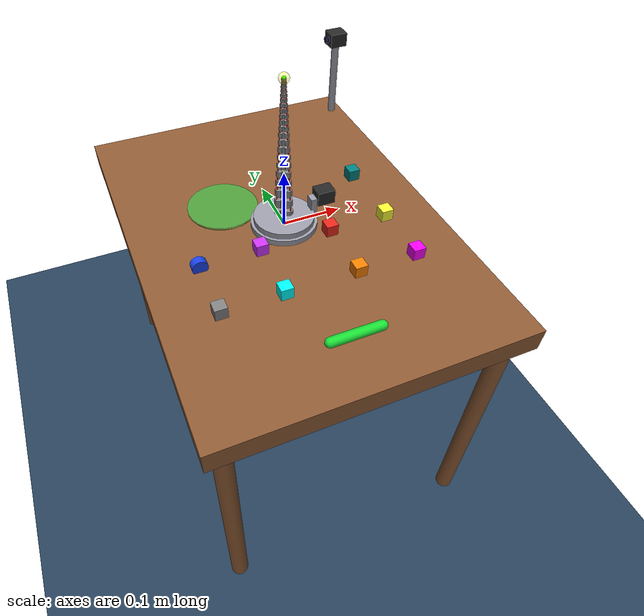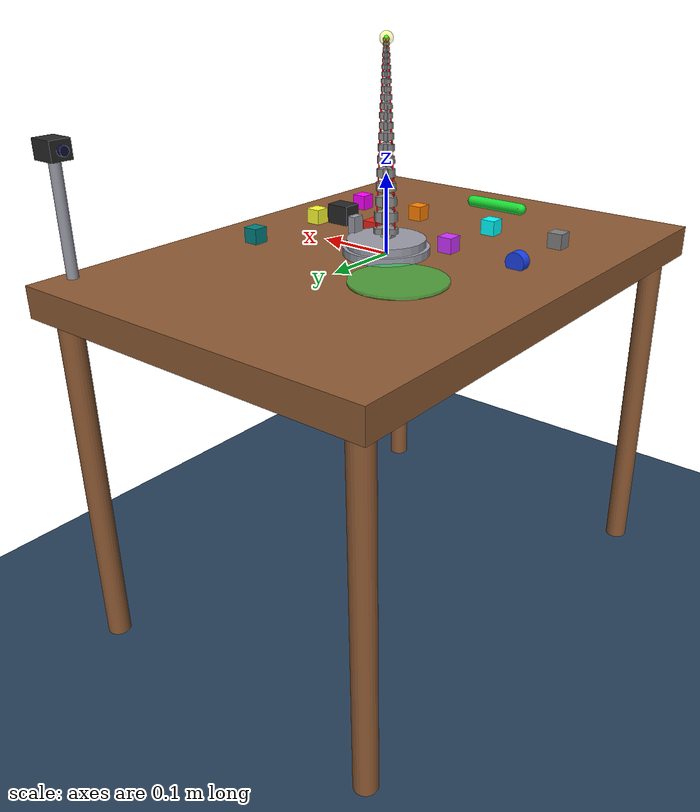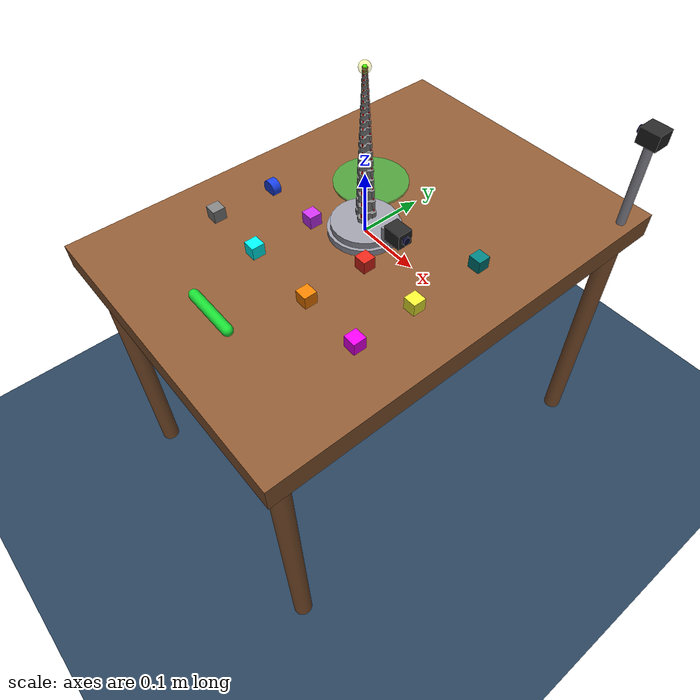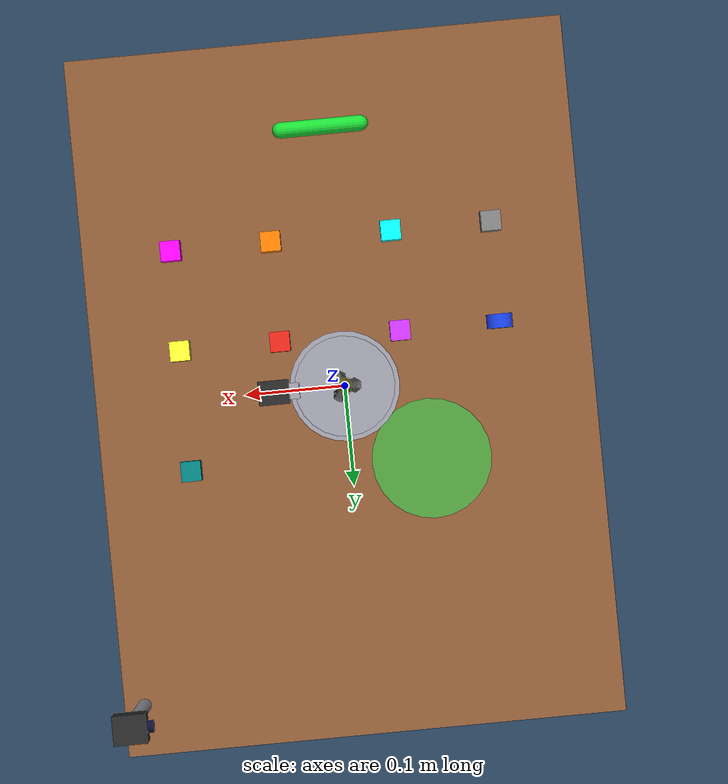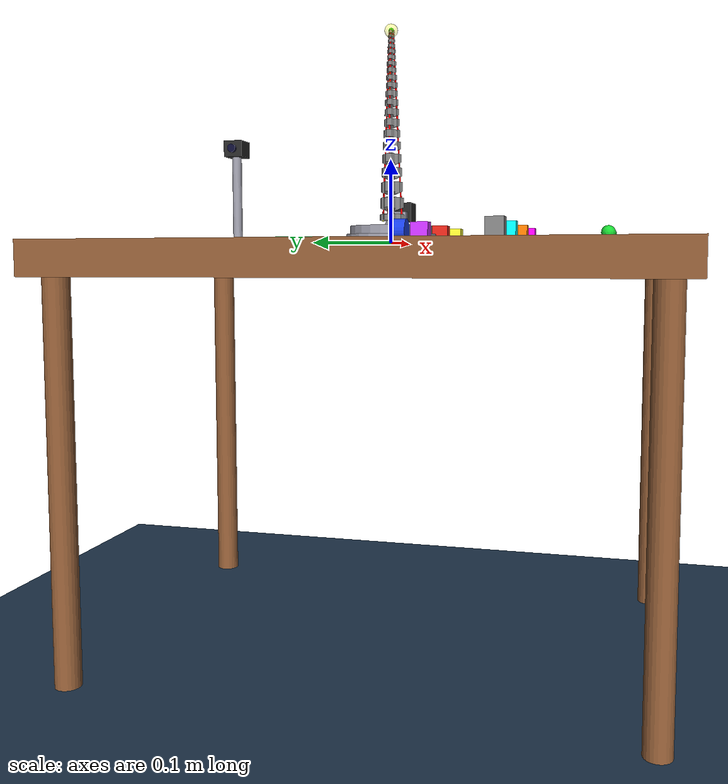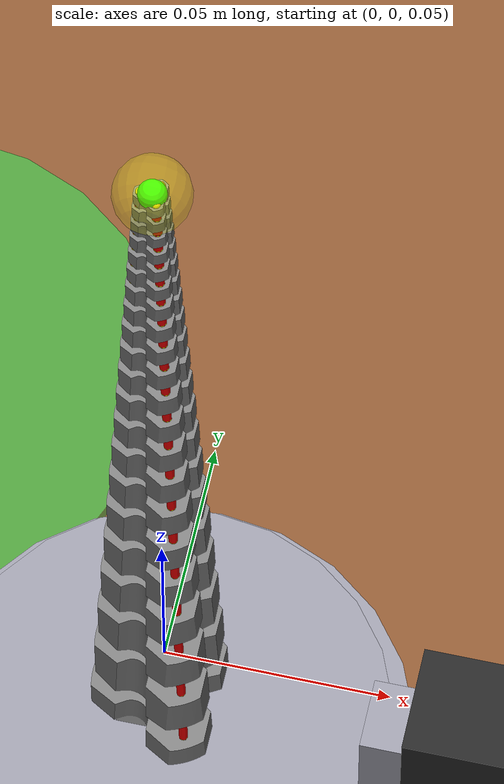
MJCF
<?xml version="1.0" ?>
<mujoco model="tentacle_pick_place">
  <compiler angle="radian" autolimits="true"/>
  <option timestep="0.002" iterations="120" gravity="0 0 -9.81" integrator="implicitfast" cone="elliptic"/>

  <default>
    <joint stiffness="0.0" damping="0.0" range="0 0.9"/>
    <geom type="mesh" xyaxes="0 0 -1 -1 0 0" contype="0" conaffinity="0" margin="0.001" solref="0.01 1" solimp="0.9 0.95 0.001"/>
  </default>

  <asset>
    <!-- Robot mesh assets -->
    <mesh name="mesh1" file="mujoco_rex_assets/Part1.stl" scale="0.001 0.001 0.001"/>
    <mesh name="mesh2" file="mujoco_rex_assets/Part2.stl" scale="0.001 0.001 0.001"/>
    <mesh name="mesh3" file="mujoco_rex_assets/Part3.stl" scale="0.001 0.001 0.001"/>
    <mesh name="mesh4" file="mujoco_rex_assets/Part4.stl" scale="0.001 0.001 0.001"/>
    <mesh name="mesh5" file="mujoco_rex_assets/Part5.stl" scale="0.001 0.001 0.001"/>
    <mesh name="mesh6" file="mujoco_rex_assets/Part6.stl" scale="0.001 0.001 0.001"/>
    <mesh name="mesh7" file="mujoco_rex_assets/Part7.stl" scale="0.001 0.001 0.001"/>
    <mesh name="mesh8" file="mujoco_rex_assets/Part8.stl" scale="0.001 0.001 0.001"/>
    <mesh name="mesh9" file="mujoco_rex_assets/Part9.stl" scale="0.001 0.001 0.001"/>
    <mesh name="mesh10" file="mujoco_rex_assets/Part10.stl" scale="0.001 0.001 0.001"/>
    <mesh name="mesh11" file="mujoco_rex_assets/Part11.stl" scale="0.001 0.001 0.001"/>
    <mesh name="mesh12" file="mujoco_rex_assets/Part12.stl" scale="0.001 0.001 0.001"/>
    <mesh name="mesh13" file="mujoco_rex_assets/Part13.stl" scale="0.001 0.001 0.001"/>
    <mesh name="mesh14" file="mujoco_rex_assets/Part14.stl" scale="0.001 0.001 0.001"/>
    <mesh name="mesh15" file="mujoco_rex_assets/Part15.stl" scale="0.001 0.001 0.001"/>
    <mesh name="mesh16" file="mujoco_rex_assets/Part16.stl" scale="0.001 0.001 0.001"/>
    <mesh name="mesh17" file="mujoco_rex_assets/Part17.stl" scale="0.001 0.001 0.001"/>
    <mesh name="mesh18" file="mujoco_rex_assets/Part18.stl" scale="0.001 0.001 0.001"/>
    <mesh name="mesh19" file="mujoco_rex_assets/Part19.stl" scale="0.001 0.001 0.001"/>
    <mesh name="mesh20" file="mujoco_rex_assets/Part20.stl" scale="0.001 0.001 0.001"/>
    <mesh name="mesh21" file="mujoco_rex_assets/Part21.stl" scale="0.001 0.001 0.001"/>

    <!-- Textures -->
    <texture type="skybox" builtin="gradient" rgb1="0.15 0.20 0.35" rgb2="0.02 0.02 0.05" width="512" height="3072"/>
    <texture type="2d" name="groundplane" builtin="checker" mark="edge" rgb1="0.2 0.3 0.4" rgb2="0.1 0.2 0.3" markrgb="0.8 0.8 0.8" width="300" height="300"/>
    <texture type="2d" name="wood_tex" builtin="flat" rgb1="0.55 0.35 0.2" rgb2="0.45 0.28 0.15" mark="random" markrgb="0.5 0.32 0.18" width="512" height="512"/>
    <texture type="2d" name="place_zone_tex" builtin="flat" rgb1="0.1 0.8 0.3" rgb2="0.1 0.7 0.25" width="128" height="128"/>

    <!-- Materials -->
    <material name="groundplane" texture="groundplane" texuniform="true" texrepeat="5 5" reflectance="0.2"/>
    <material name="wood_material" texture="wood_tex" texuniform="true" texrepeat="3 3" reflectance="0.1" specular="0.1" shininess="0.3"/>
    <material name="metal_base" rgba="0.6 0.6 0.65 1" specular="0.5" shininess="0.8" reflectance="0.3"/>
    <material name="camera_body" rgba="0.15 0.15 0.15 1" specular="0.3" shininess="0.5"/>
    <material name="camera_lens" rgba="0.05 0.05 0.2 1" specular="0.8" shininess="0.9" reflectance="0.5"/>
    <material name="place_zone_mat" texture="place_zone_tex" texuniform="true" rgba="0.1 0.9 0.3 0.6" specular="0.0"/>
    <material name="obj_red" rgba="0.9 0.15 0.1 1" specular="0.4" shininess="0.6"/>
    <material name="obj_blue" rgba="0.1 0.25 0.9 1" specular="0.4" shininess="0.6"/>
    <material name="obj_green" rgba="0.1 0.85 0.2 1" specular="0.4" shininess="0.6"/>
    <material name="tip_contact_mat" rgba="1 1 0 0.3" specular="0.0"/>
  </asset>

  <visual>
    <headlight diffuse="0.6 0.6 0.6" ambient="0.3 0.3 0.3" specular="0 0 0"/>
    <rgba haze="0.15 0.25 0.35 1"/>
    <global azimuth="150" elevation="-20"/>
    <quality shadowsize="4096"/>
  </visual>

  <worldbody>
    <!-- Lighting -->
    <light pos="0.3 -0.3 1.5" dir="-0.2 0.2 -1" directional="false" diffuse="0.8 0.8 0.8" specular="0.3 0.3 0.3" castshadow="true"/>
    <light pos="-0.3 0.3 1.0" dir="0.2 -0.2 -1" directional="false" diffuse="0.4 0.4 0.5" specular="0.1 0.1 0.1" castshadow="false"/>
    <light pos="0 0 2.0" dir="0 0 -1" directional="true" diffuse="0.3 0.3 0.3" ambient="0.15 0.15 0.15"/>

    <!-- Floor -->
    <geom name="floor" pos="0 0 -0.55" size="0 0 .125" type="plane" material="groundplane" conaffinity="1" contype="1" condim="3" xyaxes="1 0 0 0 1 0"/>

    <!-- Desk -->
    <body name="desk" pos="0 0 -0.02">
      <!-- Table top -->
      <geom name="table_top" type="box" pos="0 0 0" size="0.25 0.35 0.02" material="wood_material" conaffinity="1" contype="1" condim="4" xyaxes="1 0 0 0 1 0" friction="1.2 0.01 0.001" solref="0.006 1" solimp="0.95 0.99 0.001" mass="5.0"/>
      <!-- Table legs -->
      <geom name="leg1" type="cylinder" pos="0.22 0.32 -0.25" size="0.015 0.23" material="wood_material" conaffinity="1" contype="1" xyaxes="1 0 0 0 1 0"/>
      <geom name="leg2" type="cylinder" pos="-0.22 0.32 -0.25" size="0.015 0.23" material="wood_material" conaffinity="1" contype="1" xyaxes="1 0 0 0 1 0"/>
      <geom name="leg3" type="cylinder" pos="0.22 -0.32 -0.25" size="0.015 0.23" material="wood_material" conaffinity="1" contype="1" xyaxes="1 0 0 0 1 0"/>
      <geom name="leg4" type="cylinder" pos="-0.22 -0.32 -0.25" size="0.015 0.23" material="wood_material" conaffinity="1" contype="1" xyaxes="1 0 0 0 1 0"/>
    </body>

    <!-- Robot base -->
    <geom name="robot_base" type="cylinder" pos="0 0 0.01" size="0.05 0.01" material="metal_base" conaffinity="1" contype="1" xyaxes="1 0 0 0 1 0"/>
    <geom name="robot_base_ring" type="cylinder" pos="0 0 0.005" size="0.055 0.005" material="metal_base" conaffinity="0" contype="0" xyaxes="1 0 0 0 1 0"/>

    <!-- Camera module (mounted near base) -->
    <body name="camera_module" pos="0.07 0 0.04">
      <geom name="cam_body" type="box" size="0.015 0.012 0.012" material="camera_body" conaffinity="0" contype="0" xyaxes="1 0 0 0 1 0"/>
      <geom name="cam_lens" type="cylinder" pos="0.016 0 0" size="0.006 0.003" material="camera_lens" conaffinity="0" contype="0" euler="0 1.5708 0"/>
      <geom name="cam_mount" type="box" pos="-0.02 0 -0.015" size="0.005 0.008 0.015" material="metal_base" conaffinity="0" contype="0" xyaxes="1 0 0 0 1 0"/>
      <camera name="robot_cam" mode="fixed" pos="0.03 -0.12 0.11" xyaxes="0.848 0.530 0 -0.316 0.505 0.803" fovy="60"/>
    </body>

    <!-- Cameras -->
    <!-- Cameras -->
    <!-- Cameras -->
    <camera name="fixed_overview" mode="fixed" pos="0 -0.8 1.0" quat="0.924 0.383 0 0" fovy="55"/>
    <camera name="tracking_cam" mode="fixed" pos="0.35 -0.35 0.5" quat="0.854 0.354 0.146 0.354" fovy="75"/>
    <camera name="top_down" mode="fixed" pos="0 0 0.8" euler="0 0 0" fovy="60"/>
    <camera name="side_view" mode="fixed" pos="0.5 0 0.2" euler="1.5708 0 1.5708" fovy="60"/>
    <!-- Workspace camera: elevated 3/4 view framing the desk and all objects
         (look-at the table centre, for the YOLO vision demo). -->
    <camera name="workspace_cam" mode="fixed" pos="0.20 -0.28 0.24" xyaxes="0.832 0.555 0 -0.279 0.419 0.864" fovy="55"/>

    <!-- ===== CORNER TABLE CAMERA STAND ===== -->
    <!-- Mounted at far corner of table, covers full robot work envelope -->
    <body name="corner_cam_stand" pos="0.23 0.30 -0.02">
      <!-- Stand pole -->
      <geom type="cylinder" size="0.007 0.08" pos="0 0 0.08"
            material="metal_base" conaffinity="0" contype="0" xyaxes="1 0 0 0 1 0"/>
      <!-- Camera head housing -->
      <geom type="box" size="0.016 0.014 0.012" pos="0 0 0.168"
            material="camera_body" conaffinity="0" contype="0" xyaxes="1 0 0 0 1 0"/>
      <!-- Camera lens (visual) -->
      <geom type="cylinder" size="0.006 0.004" pos="-0.018 0 0.168"
            material="camera_lens" conaffinity="0" contype="0" euler="0 1.5708 0"/>
      <!-- Camera look-at: from world(0.215,0.30,0.148) toward robot center (0,0,0.12) -->
      <!-- xyaxes derived: cam-X=(-0.813,0.582,0), cam-Y=(-0.044,-0.062,0.997)         -->
      <!-- ensures cam-Z = (0.580,0.811,0.076) → cam looks in -(0.580,0.811,0.076)     -->
      <camera name="table_corner_cam" mode="fixed"
              pos="-0.015 0 0.168" xyaxes="-0.813 0.582 0 -0.044 -0.062 0.997" fovy="65"/>
    </body>

    <!-- Target site for RL policy -->
    <site name="target" type="sphere" size="0.01 0.01 0.01" rgba="1 0 0 0.8" pos="0 0 0"/>

    <!-- Ghost Cursor for Hand Tracking Feedback -->
    <site name="ghost_cursor" type="sphere" size="0.01 0.01 0.01" rgba="1 1 1 0.3" pos="0 0 0"/>

    <!-- Place target zone (on the desk surface) -->
    <site name="place_zone" type="cylinder" pos="-0.08 0.08 0.002" size="0.06 0.002" rgba="0.1 0.9 0.3 0.5"/>
    <geom name="place_zone_visual" type="cylinder" pos="-0.08 0.08 0.000" size="0.06 0.001" material="place_zone_mat" conaffinity="0" contype="0" xyaxes="1 0 0 0 1 0"/>
    <!-- ========== THE STACK (CENTER FRONT) ========== -->

    <body name="obj_cube" pos="0.06 -0.05 0.012">
      <freejoint/>
      <geom name="obj_cube_geom" type="box" size="0.01 0.01 0.01" material="obj_red" mass="0.02" contype="1" conaffinity="1" condim="4" margin="0.001" solref="0.006 1" solimp="0.95 0.99 0.001" friction="1.2 0.05 0.01"/>
      <site name="obj_cube_site" pos="0 0 0" size="0.002" rgba="1 1 1 0"/>
    </body>

    <body name="obj_cube_purple" pos="-0.06 -0.05 0.012">
      <freejoint/>
      <geom name="obj_cube_purple_geom" type="box" size="0.01 0.01 0.01" rgba="0.8 0.2 1.0 1.0" mass="0.02" contype="1" conaffinity="1" condim="4" margin="0.001" solref="0.006 1" solimp="0.95 0.99 0.001" friction="1.2 0.05 0.01"/>
      <site name="obj_cube_purple_site" pos="0 0 0" size="0.002" rgba="1 1 1 0"/>
    </body>

    <body name="obj_cube_yellow" pos="0.16 -0.05 0.012">
      <freejoint/>
      <geom name="obj_cube_yellow_geom" type="box" size="0.01 0.01 0.01" rgba="1.0 1.0 0.2 1.0" mass="0.02" contype="1" conaffinity="1" condim="4" margin="0.001" solref="0.006 1" solimp="0.95 0.99 0.001" friction="1.2 0.05 0.01"/>
      <site name="obj_cube_yellow_site" pos="0 0 0" size="0.002" rgba="1 1 1 0"/>
    </body>

    <body name="obj_cylinder" pos="-0.16 -0.05 0.008">
      <freejoint/>
      <geom name="obj_cylinder_geom" type="cylinder" size="0.013 0.007" material="obj_blue" mass="0.02" contype="1" conaffinity="1" condim="4" margin="0.001" solref="0.006 1" solimp="0.95 0.99 0.001" friction="1.2 0.05 0.01"/>
      <site name="obj_cylinder_site" pos="0 0 0" size="0.002" rgba="1 1 1 0"/>
    </body>

    <body name="obj_bar" pos="0.0 -0.26 0.009">
      <freejoint/>
      <geom name="obj_bar_geom" type="capsule" size="0.008 0.04" material="obj_green" mass="0.03" contype="1" conaffinity="1" condim="4" margin="0.001" solref="0.006 1" solimp="0.95 0.99 0.001" friction="1.2 0.05 0.01" euler="0 1.57 0"/>
      <site name="obj_bar_site" pos="0 0 0" size="0.002" rgba="1 1 1 0"/>
    </body>

    <!-- 5 Extra Cubes -->
    <body name="obj_cube_extra_1" pos="0.06 -0.15 0.012">
      <freejoint/>
      <geom name="obj_cube_extra_1_geom" type="box" size="0.01 0.01 0.01" rgba="1.0 0.5 0.0 1.0" mass="0.02" contype="1" conaffinity="1" condim="4" margin="0.001" solref="0.006 1" solimp="0.95 0.99 0.001" friction="1.2 0.05 0.01"/>
      <site name="obj_cube_extra_1_site" pos="0 0 0" size="0.002" rgba="1 1 1 0"/>
    </body>

    <body name="obj_cube_extra_2" pos="-0.06 -0.15 0.012">
      <freejoint/>
      <geom name="obj_cube_extra_2_geom" type="box" size="0.01 0.01 0.01" rgba="0.0 1.0 1.0 1.0" mass="0.02" contype="1" conaffinity="1" condim="4" margin="0.001" solref="0.006 1" solimp="0.95 0.99 0.001" friction="1.2 0.05 0.01"/>
      <site name="obj_cube_extra_2_site" pos="0 0 0" size="0.002" rgba="1 1 1 0"/>
    </body>

    <body name="obj_cube_extra_3" pos="0.16 -0.15 0.012">
      <freejoint/>
      <geom name="obj_cube_extra_3_geom" type="box" size="0.01 0.01 0.01" rgba="1.0 0.0 1.0 1.0" mass="0.02" contype="1" conaffinity="1" condim="4" margin="0.001" solref="0.006 1" solimp="0.95 0.99 0.001" friction="1.2 0.05 0.01"/>
      <site name="obj_cube_extra_3_site" pos="0 0 0" size="0.002" rgba="1 1 1 0"/>
    </body>

    <body name="obj_cube_extra_4" pos="-0.16 -0.15 0.012">
      <freejoint/>
      <geom name="obj_cube_extra_4_geom" type="box" size="0.01 0.01 0.01" rgba="0.5 0.5 0.5 1.0" mass="0.02" contype="1" conaffinity="1" condim="4" margin="0.001" solref="0.006 1" solimp="0.95 0.99 0.001" friction="1.2 0.05 0.01"/>
      <site name="obj_cube_extra_4_site" pos="0 0 0" size="0.002" rgba="1 1 1 0"/>
    </body>

    <body name="obj_cube_extra_5" pos="0.16 0.07 0.012">
      <freejoint/>
      <geom name="obj_cube_extra_5_geom" type="box" size="0.01 0.01 0.01" rgba="0.0 0.5 0.5 1.0" mass="0.02" contype="1" conaffinity="1" condim="4" margin="0.001" solref="0.006 1" solimp="0.95 0.99 0.001" friction="1.2 0.05 0.01"/>
      <site name="obj_cube_extra_5_site" pos="0 0 0" size="0.002" rgba="1 1 1 0"/>
    </body>

    <!-- ========== TENTACLE ROBOT ========== -->
    <body name="body1" pos="0 0 0.022">
      <geom name="geom1" type="mesh" mesh="mesh1" contype="1" conaffinity="0"/>
      <!-- Base yaw: rotates the whole tentacle about the vertical axis. This is
           the 3rd actuated task-DOF (true twist), held at 0 during RL. -->
      <!-- Yaw is heavily damped on purpose: rotating the compliant 20-joint
           backbone is a slow mode, so prioritise a stable, overshoot-free
           reorientation over a snappy (oscillating) one. -->
      <joint type="hinge" name="base_yaw" axis="0 0 1" pos="0 0 0" range="-1.5708 1.5708" damping="50.0" stiffness="0.0"/>
      <body name="body2" pos="0 0 0">
        <geom name="geom2" type="mesh" mesh="mesh2" contype="1" conaffinity="0"/>
        <joint type="ball" name="joint1" pos="0 0 0.0143255" stiffness="0.14107" damping="0.05"/>
        <body name="body3" pos="0 0 0">
          <geom name="geom3" type="mesh" mesh="mesh3" contype="1" conaffinity="0"/>
          <joint type="ball" name="joint2" pos="0 0 0.034275" stiffness="0.12269" damping="0.04"/>
          <body name="body4" pos="0 0 0">
            <geom name="geom4" type="mesh" mesh="mesh4" contype="1" conaffinity="0"/>
            <joint type="ball" name="joint3" pos="0 0 0.052814" stiffness="0.1067" damping="0.03"/>
            <body name="body5" pos="0 0 0">
              <geom name="geom5" type="mesh" mesh="mesh5" contype="1" conaffinity="0"/>
              <joint type="ball" name="joint4" pos="0 0 0.0700425" stiffness="0.092797" damping="0.03"/>
              <body name="body6" pos="0 0 0">
                <geom name="geom6" type="mesh" mesh="mesh6" contype="1" conaffinity="0"/>
                <joint type="ball" name="joint5" pos="0 0 0.0860535" stiffness="0.080705" damping="0.02"/>
                <body name="body7" pos="0 0 0">
                  <geom name="geom7" type="mesh" mesh="mesh7" contype="1" conaffinity="0"/>
                  <joint type="ball" name="joint6" pos="0 0 0.1009325" stiffness="0.070188" damping="0.0049132"/>
                  <body name="body8" pos="0 0 0">
                    <geom name="geom8" type="mesh" mesh="mesh8" contype="1" conaffinity="0"/>
                    <joint type="ball" name="joint7" pos="0 0 0.11476" stiffness="0.061042" damping="0.004273"/>
                    <body name="body9" pos="0 0 0">
                      <geom name="geom9" type="mesh" mesh="mesh9" contype="1" conaffinity="0"/>
                      <joint type="ball" name="joint8" pos="0 0 0.12761" stiffness="0.053088" damping="0.0037162"/>
                      <body name="body10" pos="0 0 0">
                        <geom name="geom10" type="mesh" mesh="mesh10" contype="1" conaffinity="0"/>
                        <joint type="ball" name="joint9" pos="0 0 0.13955" stiffness="0.04617" damping="0.0032319"/>
                        <body name="body11" pos="0 0 0">
                          <geom name="geom11" type="mesh" mesh="mesh11" contype="1" conaffinity="0"/>
                          <joint type="ball" name="joint10" pos="0 0 0.150649" stiffness="0.040154" damping="0.0028108"/>
                          <body name="body12" pos="0 0 0">
                            <geom name="geom12" type="mesh" mesh="mesh12" contype="1" conaffinity="0"/>
                            <joint type="ball" name="joint11" pos="0 0 0.160962" stiffness="0.034922" damping="0.0024445"/>
                            <body name="body13" pos="0 0 0">
                              <geom name="geom13" type="mesh" mesh="mesh13" contype="1" conaffinity="0"/>
                              <joint type="ball" name="joint12" pos="0 0 0.17055" stiffness="0.030371" damping="0.002126"/>
                              <body name="body14" pos="0 0 0">
                                <geom name="geom14" type="mesh" mesh="mesh14" contype="1" conaffinity="0"/>
                                <joint type="ball" name="joint13" pos="0 0 0.179453" stiffness="0.026414" damping="0.001849"/>
                                <body name="body15" pos="0 0 0">
                                  <geom name="geom15" type="mesh" mesh="mesh15" contype="1" conaffinity="0"/>
                                  <joint type="ball" name="joint14" pos="0 0 0.18773" stiffness="0.022972" damping="0.001608"/>
                                  <body name="body16" pos="0 0 0">
                                    <geom name="geom16" type="mesh" mesh="mesh16" contype="1" conaffinity="0"/>
                                    <joint type="ball" name="joint15" pos="0 0 0.19542" stiffness="0.019978" damping="0.0013985"/>
                                    <body name="body17" pos="0 0 0">
                                      <geom name="geom17" type="mesh" mesh="mesh17" contype="1" conaffinity="0"/>
                                      <joint type="ball" name="joint16" pos="0 0 0.202571" stiffness="0.017375" damping="0.0012163"/>
                                      <body name="body18" pos="0 0 0">
                                        <geom name="geom18" type="mesh" mesh="mesh18" contype="1" conaffinity="0"/>
                                        <joint type="ball" name="joint17" pos="0 0 0.2092135" stiffness="0.015111" damping="0.0010578"/>
                                        <body name="body19" pos="0 0 0">
                                          <geom name="geom19" type="mesh" mesh="mesh19" contype="1" conaffinity="0"/>
                                          <joint type="ball" name="joint18" pos="0 0 0.2153875" stiffness="0.013142" damping="0.00091994"/>
                                          <body name="body20" pos="0 0 0">
                                            <geom name="geom20" type="mesh" mesh="mesh20" contype="1" conaffinity="0"/>
                                            <joint type="ball" name="joint19" pos="0 0 0.2211245" stiffness="0.01143" damping="0.00080007"/>
                                            <body name="body21" pos="0 0 0">
                                              <geom name="geom21" type="mesh" mesh="mesh21" contype="1" conaffinity="0"/>
                                              <joint type="ball" name="joint20" pos="0 0 0.2264565" stiffness="0.0099402" damping="0.00069581"/>

                                              <!-- Tip contact geom - enables collision with objects -->
                                              <geom name="tip_contact" type="sphere" pos="0 0 0.230871" size="0.008"
                                                    contype="1" conaffinity="1" condim="4" friction="2.0 0.02 0.001"
                                                    material="tip_contact_mat" mass="0.001"
                                                    solref="0.006 1" solimp="0.95 0.99 0.001"/>

                                              <site name="tip_center" pos="0 0 0.230871" size="0.003" rgba="0 1 0 1"/>

                                              <!-- Tendon routing sites for segment 20 -->
                                              <site name="site_in_20_0" pos="0.00125 0.00216 0.22796" size="0.001" rgba="1 1 0 1"/>
                                              <site name="site_out_20_0" pos="0.00117 0.00204 0.23087" size="0.001" rgba="1 1 0 1"/>
                                              <site name="site_in_20_1" pos="-0.00250 0.00000 0.22796" size="0.001" rgba="1 1 0 1"/>
                                              <site name="site_out_20_1" pos="-0.00235 0.00000 0.23087" size="0.001" rgba="1 1 0 1"/>
                                              <site name="site_in_20_2" pos="0.00125 -0.00216 0.22796" size="0.001" rgba="1 1 0 1"/>
                                              <site name="site_out_20_2" pos="0.00117 -0.00204 0.23087" size="0.001" rgba="1 1 0 1"/>
                                            </body>
                                            <site name="site_in_19_0" pos="0.00138 0.00239 0.22275" size="0.001" rgba="1 1 0 1"/>
                                            <site name="site_out_19_0" pos="0.00130 0.00225 0.22588" size="0.001" rgba="1 1 0 1"/>
                                            <site name="site_in_19_1" pos="-0.00276 0.00000 0.22275" size="0.001" rgba="1 1 0 1"/>
                                            <site name="site_out_19_1" pos="-0.00260 0.00000 0.22588" size="0.001" rgba="1 1 0 1"/>
                                            <site name="site_in_19_2" pos="0.00138 -0.00239 0.22275" size="0.001" rgba="1 1 0 1"/>
                                            <site name="site_out_19_2" pos="0.00130 -0.00225 0.22588" size="0.001" rgba="1 1 0 1"/>
                                          </body>
                                          <site name="site_in_18_0" pos="0.00152 0.00264 0.21713" size="0.001" rgba="1 1 0 1"/>
                                          <site name="site_out_18_0" pos="0.00144 0.00249 0.22050" size="0.001" rgba="1 1 0 1"/>
                                          <site name="site_in_18_1" pos="-0.00304 0.00000 0.21713" size="0.001" rgba="1 1 0 1"/>
                                          <site name="site_out_18_1" pos="-0.00287 0.00000 0.22050" size="0.001" rgba="1 1 0 1"/>
                                          <site name="site_in_18_2" pos="0.00152 -0.00264 0.21713" size="0.001" rgba="1 1 0 1"/>
                                          <site name="site_out_18_2" pos="0.00144 -0.00249 0.22050" size="0.001" rgba="1 1 0 1"/>
                                        </body>
                                        <site name="site_in_17_0" pos="0.00167 0.00290 0.21109" size="0.001" rgba="1 1 0 1"/>
                                        <site name="site_out_17_0" pos="0.00158 0.00274 0.21472" size="0.001" rgba="1 1 0 1"/>
                                        <site name="site_in_17_1" pos="-0.00335 0.00000 0.21109" size="0.001" rgba="1 1 0 1"/>
                                        <site name="site_out_17_1" pos="-0.00316 0.00000 0.21472" size="0.001" rgba="1 1 0 1"/>
                                        <site name="site_in_17_2" pos="0.00167 -0.00290 0.21109" size="0.001" rgba="1 1 0 1"/>
                                        <site name="site_out_17_2" pos="0.00158 -0.00274 0.21472" size="0.001" rgba="1 1 0 1"/>
                                      </body>
                                      <site name="site_in_16_0" pos="0.00184 0.00318 0.20459" size="0.001" rgba="1 1 0 1"/>
                                      <site name="site_out_16_0" pos="0.00174 0.00301 0.20849" size="0.001" rgba="1 1 0 1"/>
                                      <site name="site_in_16_1" pos="-0.00368 0.00000 0.20459" size="0.001" rgba="1 1 0 1"/>
                                      <site name="site_out_16_1" pos="-0.00348 0.00000 0.20849" size="0.001" rgba="1 1 0 1"/>
                                      <site name="site_in_16_2" pos="0.00184 -0.00318 0.20459" size="0.001" rgba="1 1 0 1"/>
                                      <site name="site_out_16_2" pos="0.00174 -0.00301 0.20849" size="0.001" rgba="1 1 0 1"/>
                                    </body>
                                    <site name="site_in_15_0" pos="0.00201 0.00349 0.19760" size="0.001" rgba="1 1 0 1"/>
                                    <site name="site_out_15_0" pos="0.00191 0.00331 0.20179" size="0.001" rgba="1 1 0 1"/>
                                    <site name="site_in_15_1" pos="-0.00403 0.00000 0.19760" size="0.001" rgba="1 1 0 1"/>
                                    <site name="site_out_15_1" pos="-0.00382 0.00000 0.20179" size="0.001" rgba="1 1 0 1"/>
                                    <site name="site_in_15_2" pos="0.00201 -0.00349 0.19760" size="0.001" rgba="1 1 0 1"/>
                                    <site name="site_out_15_2" pos="0.00191 -0.00331 0.20179" size="0.001" rgba="1 1 0 1"/>
                                  </body>
                                  <site name="site_in_14_0" pos="0.00220 0.00382 0.19007" size="0.001" rgba="1 1 0 1"/>
                                  <site name="site_out_14_0" pos="0.00209 0.00362 0.19459" size="0.001" rgba="1 1 0 1"/>
                                  <site name="site_in_14_1" pos="-0.00441 0.00000 0.19007" size="0.001" rgba="1 1 0 1"/>
                                  <site name="site_out_14_1" pos="-0.00418 0.00000 0.19459" size="0.001" rgba="1 1 0 1"/>
                                  <site name="site_in_14_2" pos="0.00220 -0.00382 0.19007" size="0.001" rgba="1 1 0 1"/>
                                  <site name="site_out_14_2" pos="0.00209 -0.00362 0.19459" size="0.001" rgba="1 1 0 1"/>
                                </body>
                                <site name="site_in_13_0" pos="0.00241 0.00417 0.18198" size="0.001" rgba="1 1 0 1"/>
                                <site name="site_out_13_0" pos="0.00229 0.00396 0.18684" size="0.001" rgba="1 1 0 1"/>
                                <site name="site_in_13_1" pos="-0.00482 0.00000 0.18198" size="0.001" rgba="1 1 0 1"/>
                                <site name="site_out_13_1" pos="-0.00457 0.00000 0.18684" size="0.001" rgba="1 1 0 1"/>
                                <site name="site_in_13_2" pos="0.00241 -0.00417 0.18198" size="0.001" rgba="1 1 0 1"/>
                                <site name="site_out_13_2" pos="0.00229 -0.00396 0.18684" size="0.001" rgba="1 1 0 1"/>
                              </body>
                              <site name="site_in_12_0" pos="0.00263 0.00455 0.17326" size="0.001" rgba="1 1 0 1"/>
                              <site name="site_out_12_0" pos="0.00250 0.00432 0.17849" size="0.001" rgba="1 1 0 1"/>
                              <site name="site_in_12_1" pos="-0.00526 0.00000 0.17326" size="0.001" rgba="1 1 0 1"/>
                              <site name="site_out_12_1" pos="-0.00499 0.00000 0.17849" size="0.001" rgba="1 1 0 1"/>
                              <site name="site_in_12_2" pos="0.00263 -0.00455 0.17326" size="0.001" rgba="1 1 0 1"/>
                              <site name="site_out_12_2" pos="0.00250 -0.00432 0.17849" size="0.001" rgba="1 1 0 1"/>
                            </body>
                            <site name="site_in_11_0" pos="0.00286 0.00496 0.16389" size="0.001" rgba="1 1 0 1"/>
                            <site name="site_out_11_0" pos="0.00272 0.00471 0.16951" size="0.001" rgba="1 1 0 1"/>
                            <site name="site_in_11_1" pos="-0.00573 0.00000 0.16389" size="0.001" rgba="1 1 0 1"/>
                            <site name="site_out_11_1" pos="-0.00544 0.00000 0.16951" size="0.001" rgba="1 1 0 1"/>
                            <site name="site_in_11_2" pos="0.00286 -0.00496 0.16389" size="0.001" rgba="1 1 0 1"/>
                            <site name="site_out_11_2" pos="0.00272 -0.00471 0.16951" size="0.001" rgba="1 1 0 1"/>
                          </body>
                          <site name="site_in_10_0" pos="0.00312 0.00540 0.15379" size="0.001" rgba="1 1 0 1"/>
                          <site name="site_out_10_0" pos="0.00297 0.00514 0.15985" size="0.001" rgba="1 1 0 1"/>
                          <site name="site_in_10_1" pos="-0.00624 0.00000 0.15379" size="0.001" rgba="1 1 0 1"/>
                          <site name="site_out_10_1" pos="-0.00593 0.00000 0.15985" size="0.001" rgba="1 1 0 1"/>
                          <site name="site_in_10_2" pos="0.00312 -0.00540 0.15379" size="0.001" rgba="1 1 0 1"/>
                          <site name="site_out_10_2" pos="0.00297 -0.00514 0.15985" size="0.001" rgba="1 1 0 1"/>
                        </body>
                        <site name="site_in_9_0" pos="0.00339 0.00588 0.14294" size="0.001" rgba="1 1 0 1"/>
                        <site name="site_out_9_0" pos="0.00323 0.00559 0.14945" size="0.001" rgba="1 1 0 1"/>
                        <site name="site_in_9_1" pos="-0.00678 0.00000 0.14294" size="0.001" rgba="1 1 0 1"/>
                        <site name="site_out_9_1" pos="-0.00646 0.00000 0.14945" size="0.001" rgba="1 1 0 1"/>
                        <site name="site_in_9_2" pos="0.00339 -0.00588 0.14294" size="0.001" rgba="1 1 0 1"/>
                        <site name="site_out_9_2" pos="0.00323 -0.00559 0.14945" size="0.001" rgba="1 1 0 1"/>
                      </body>
                      <site name="site_in_8_0" pos="0.00369 0.00639 0.13125" size="0.001" rgba="1 1 0 1"/>
                      <site name="site_out_8_0" pos="0.00351 0.00608 0.13826" size="0.001" rgba="1 1 0 1"/>
                      <site name="site_in_8_1" pos="-0.00737 0.00000 0.13125" size="0.001" rgba="1 1 0 1"/>
                      <site name="site_out_8_1" pos="-0.00702 0.00000 0.13826" size="0.001" rgba="1 1 0 1"/>
                      <site name="site_in_8_2" pos="0.00369 -0.00639 0.13125" size="0.001" rgba="1 1 0 1"/>
                      <site name="site_out_8_2" pos="0.00351 -0.00608 0.13826" size="0.001" rgba="1 1 0 1"/>
                    </body>
                    <site name="site_in_7_0" pos="0.00400 0.00693 0.11868" size="0.001" rgba="1 1 0 1"/>
                    <site name="site_out_7_0" pos="0.00381 0.00661 0.12622" size="0.001" rgba="1 1 0 1"/>
                    <site name="site_in_7_1" pos="-0.00801 0.00000 0.11868" size="0.001" rgba="1 1 0 1"/>
                    <site name="site_out_7_1" pos="-0.00763 0.00000 0.12622" size="0.001" rgba="1 1 0 1"/>
                    <site name="site_in_7_2" pos="0.00400 -0.00693 0.11868" size="0.001" rgba="1 1 0 1"/>
                    <site name="site_out_7_2" pos="0.00381 -0.00661 0.12622" size="0.001" rgba="1 1 0 1"/>
                  </body>
                  <site name="site_in_6_0" pos="0.00434 0.00753 0.10515" size="0.001" rgba="1 1 0 1"/>
                  <site name="site_out_6_0" pos="0.00414 0.00717 0.11327" size="0.001" rgba="1 1 0 1"/>
                  <site name="site_in_6_1" pos="-0.00869 0.00000 0.10515" size="0.001" rgba="1 1 0 1"/>
                  <site name="site_out_6_1" pos="-0.00828 0.00000 0.11327" size="0.001" rgba="1 1 0 1"/>
                  <site name="site_in_6_2" pos="0.00434 -0.00753 0.10515" size="0.001" rgba="1 1 0 1"/>
                  <site name="site_out_6_2" pos="0.00414 -0.00717 0.11327" size="0.001" rgba="1 1 0 1"/>
                </body>
                <site name="site_in_5_0" pos="0.00471 0.00816 0.09060" size="0.001" rgba="1 1 0 1"/>
                <site name="site_out_5_0" pos="0.00449 0.00778 0.09933" size="0.001" rgba="1 1 0 1"/>
                <site name="site_in_5_1" pos="-0.00942 0.00000 0.09060" size="0.001" rgba="1 1 0 1"/>
                <site name="site_out_5_1" pos="-0.00898 0.00000 0.09933" size="0.001" rgba="1 1 0 1"/>
                <site name="site_in_5_2" pos="0.00471 -0.00816 0.09060" size="0.001" rgba="1 1 0 1"/>
                <site name="site_out_5_2" pos="0.00449 -0.00778 0.09933" size="0.001" rgba="1 1 0 1"/>
              </body>
              <site name="site_in_4_0" pos="0.00511 0.00885 0.07493" size="0.001" rgba="1 1 0 1"/>
              <site name="site_out_4_0" pos="0.00487 0.00843 0.08433" size="0.001" rgba="1 1 0 1"/>
              <site name="site_in_4_1" pos="-0.01021 0.00000 0.07493" size="0.001" rgba="1 1 0 1"/>
              <site name="site_out_4_1" pos="-0.00974 0.00000 0.08433" size="0.001" rgba="1 1 0 1"/>
              <site name="site_in_4_2" pos="0.00511 -0.00885 0.07493" size="0.001" rgba="1 1 0 1"/>
              <site name="site_out_4_2" pos="0.00487 -0.00843 0.08433" size="0.001" rgba="1 1 0 1"/>
            </body>
            <site name="site_in_3_0" pos="0.00553 0.00958 0.05808" size="0.001" rgba="1 1 0 1"/>
            <site name="site_out_3_0" pos="0.00528 0.00914 0.06819" size="0.001" rgba="1 1 0 1"/>
            <site name="site_in_3_1" pos="-0.01106 0.00000 0.05808" size="0.001" rgba="1 1 0 1"/>
            <site name="site_out_3_1" pos="-0.01055 0.00000 0.06819" size="0.001" rgba="1 1 0 1"/>
            <site name="site_in_3_2" pos="0.00553 -0.00958 0.05808" size="0.001" rgba="1 1 0 1"/>
            <site name="site_out_3_2" pos="0.00528 -0.00914 0.06819" size="0.001" rgba="1 1 0 1"/>
          </body>
          <site name="site_in_2_0" pos="0.00599 0.01037 0.03994" size="0.001" rgba="1 1 0 1"/>
          <site name="site_out_2_0" pos="0.00571 0.00990 0.05082" size="0.001" rgba="1 1 0 1"/>
          <site name="site_in_2_1" pos="-0.01198 0.00000 0.03994" size="0.001" rgba="1 1 0 1"/>
          <site name="site_out_2_1" pos="-0.01143 0.00000 0.05082" size="0.001" rgba="1 1 0 1"/>
          <site name="site_in_2_2" pos="0.00599 -0.01037 0.03994" size="0.001" rgba="1 1 0 1"/>
          <site name="site_out_2_2" pos="0.00571 -0.00990 0.05082" size="0.001" rgba="1 1 0 1"/>
        </body>
        <site name="site_in_1_0" pos="0.00648 0.01123 0.02042" size="0.001" rgba="1 1 0 1"/>
        <site name="site_out_1_0" pos="0.00619 0.01071 0.03213" size="0.001" rgba="1 1 0 1"/>
        <site name="site_in_1_1" pos="-0.01296 0.00000 0.02042" size="0.001" rgba="1 1 0 1"/>
        <site name="site_out_1_1" pos="-0.01237 0.00000 0.03213" size="0.001" rgba="1 1 0 1"/>
        <site name="site_in_1_2" pos="0.00648 -0.01123 0.02042" size="0.001" rgba="1 1 0 1"/>
        <site name="site_out_1_2" pos="0.00619 -0.01071 0.03213" size="0.001" rgba="1 1 0 1"/>
      </body>
      <site name="site_in_0_0" pos="0.00687 0.01190 0.00500" size="0.001" rgba="1 1 0 1"/>
      <site name="site_out_0_0" pos="0.00669 0.01159 0.01202" size="0.001" rgba="1 1 0 1"/>
      <site name="site_in_0_1" pos="-0.01374 0.00000 0.00500" size="0.001" rgba="1 1 0 1"/>
      <site name="site_out_0_1" pos="-0.01339 0.00000 0.01202" size="0.001" rgba="1 1 0 1"/>
      <site name="site_in_0_2" pos="0.00687 -0.01190 0.00500" size="0.001" rgba="1 1 0 1"/>
      <site name="site_out_0_2" pos="0.00669 -0.01159 0.01202" size="0.001" rgba="1 1 0 1"/>
    </body>
  </worldbody>

  <equality>
    <weld name="grasp_cube" body1="body21" body2="obj_cube" active="false"/>
    <weld name="grasp_cylinder" body1="body21" body2="obj_cylinder" active="false"/>
    <weld name="grasp_bar" body1="body21" body2="obj_bar" active="false"/>
    <weld name="grasp_purple" body1="body21" body2="obj_cube_purple" active="false"/>
    <weld name="grasp_yellow" body1="body21" body2="obj_cube_yellow" active="false"/>
    <weld name="grasp_extra_1" body1="body21" body2="obj_cube_extra_1" active="false"/>
    <weld name="grasp_extra_2" body1="body21" body2="obj_cube_extra_2" active="false"/>
    <weld name="grasp_extra_3" body1="body21" body2="obj_cube_extra_3" active="false"/>
    <weld name="grasp_extra_4" body1="body21" body2="obj_cube_extra_4" active="false"/>
    <weld name="grasp_extra_5" body1="body21" body2="obj_cube_extra_5" active="false"/>
  </equality>

  <tendon>
    <spatial name="tendon_1" width="0.001" rgba="1 0 0 1">
      <site site="site_in_0_0"/>
      <site site="site_out_0_0"/>
      <site site="site_in_1_0"/>
      <site site="site_out_1_0"/>
      <site site="site_in_2_0"/>
      <site site="site_out_2_0"/>
      <site site="site_in_3_0"/>
      <site site="site_out_3_0"/>
      <site site="site_in_4_0"/>
      <site site="site_out_4_0"/>
      <site site="site_in_5_0"/>
      <site site="site_out_5_0"/>
      <site site="site_in_6_0"/>
      <site site="site_out_6_0"/>
      <site site="site_in_7_0"/>
      <site site="site_out_7_0"/>
      <site site="site_in_8_0"/>
      <site site="site_out_8_0"/>
      <site site="site_in_9_0"/>
      <site site="site_out_9_0"/>
      <site site="site_in_10_0"/>
      <site site="site_out_10_0"/>
    </spatial>
    <spatial name="tendon_2" width="0.001" rgba="1 0 0 1">
      <site site="site_in_0_1"/>
      <site site="site_out_0_1"/>
      <site site="site_in_1_1"/>
      <site site="site_out_1_1"/>
      <site site="site_in_2_1"/>
      <site site="site_out_2_1"/>
      <site site="site_in_3_1"/>
      <site site="site_out_3_1"/>
      <site site="site_in_4_1"/>
      <site site="site_out_4_1"/>
      <site site="site_in_5_1"/>
      <site site="site_out_5_1"/>
      <site site="site_in_6_1"/>
      <site site="site_out_6_1"/>
      <site site="site_in_7_1"/>
      <site site="site_out_7_1"/>
      <site site="site_in_8_1"/>
      <site site="site_out_8_1"/>
      <site site="site_in_9_1"/>
      <site site="site_out_9_1"/>
      <site site="site_in_10_1"/>
      <site site="site_out_10_1"/>
    </spatial>
    <spatial name="tendon_3" width="0.001" rgba="1 0 0 1">
      <site site="site_in_0_2"/>
      <site site="site_out_0_2"/>
      <site site="site_in_1_2"/>
      <site site="site_out_1_2"/>
      <site site="site_in_2_2"/>
      <site site="site_out_2_2"/>
      <site site="site_in_3_2"/>
      <site site="site_out_3_2"/>
      <site site="site_in_4_2"/>
      <site site="site_out_4_2"/>
      <site site="site_in_5_2"/>
      <site site="site_out_5_2"/>
      <site site="site_in_6_2"/>
      <site site="site_out_6_2"/>
      <site site="site_in_7_2"/>
      <site site="site_out_7_2"/>
      <site site="site_in_8_2"/>
      <site site="site_out_8_2"/>
      <site site="site_in_9_2"/>
      <site site="site_out_9_2"/>
      <site site="site_in_10_2"/>
      <site site="site_out_10_2"/>
    </spatial>
    <spatial name="tendon_4" width="0.001" rgba="1 0 0 1">
      <site site="site_in_10_0"/>
      <site site="site_out_10_0"/>
      <site site="site_in_11_0"/>
      <site site="site_out_11_0"/>
      <site site="site_in_12_0"/>
      <site site="site_out_12_0"/>
      <site site="site_in_13_0"/>
      <site site="site_out_13_0"/>
      <site site="site_in_14_0"/>
      <site site="site_out_14_0"/>
      <site site="site_in_15_0"/>
      <site site="site_out_15_0"/>
      <site site="site_in_16_0"/>
      <site site="site_out_16_0"/>
      <site site="site_in_17_0"/>
      <site site="site_out_17_0"/>
      <site site="site_in_18_0"/>
      <site site="site_out_18_0"/>
      <site site="site_in_19_0"/>
      <site site="site_out_19_0"/>
      <site site="site_in_20_0"/>
      <site site="site_out_20_0"/>
    </spatial>
    <spatial name="tendon_5" width="0.001" rgba="1 0 0 1">
      <site site="site_in_10_1"/>
      <site site="site_out_10_1"/>
      <site site="site_in_11_1"/>
      <site site="site_out_11_1"/>
      <site site="site_in_12_1"/>
      <site site="site_out_12_1"/>
      <site site="site_in_13_1"/>
      <site site="site_out_13_1"/>
      <site site="site_in_14_1"/>
      <site site="site_out_14_1"/>
      <site site="site_in_15_1"/>
      <site site="site_out_15_1"/>
      <site site="site_in_16_1"/>
      <site site="site_out_16_1"/>
      <site site="site_in_17_1"/>
      <site site="site_out_17_1"/>
      <site site="site_in_18_1"/>
      <site site="site_out_18_1"/>
      <site site="site_in_19_1"/>
      <site site="site_out_19_1"/>
      <site site="site_in_20_1"/>
      <site site="site_out_20_1"/>
    </spatial>
    <spatial name="tendon_6" width="0.001" rgba="1 0 0 1">
      <site site="site_in_10_2"/>
      <site site="site_out_10_2"/>
      <site site="site_in_11_2"/>
      <site site="site_out_11_2"/>
      <site site="site_in_12_2"/>
      <site site="site_out_12_2"/>
      <site site="site_in_13_2"/>
      <site site="site_out_13_2"/>
      <site site="site_in_14_2"/>
      <site site="site_out_14_2"/>
      <site site="site_in_15_2"/>
      <site site="site_out_15_2"/>
      <site site="site_in_16_2"/>
      <site site="site_out_16_2"/>
      <site site="site_in_17_2"/>
      <site site="site_out_17_2"/>
      <site site="site_in_18_2"/>
      <site site="site_out_18_2"/>
      <site site="site_in_19_2"/>
      <site site="site_out_19_2"/>
      <site site="site_in_20_2"/>
      <site site="site_out_20_2"/>
    </spatial>
  </tendon>

  <actuator>
    <position name="actuator_1" tendon="tendon_1" kp="200.0" forcerange="-200 0" ctrlrange="0.060 0.170"/>
    <position name="actuator_2" tendon="tendon_2" kp="200.0" forcerange="-200 0" ctrlrange="0.060 0.170"/>
    <position name="actuator_3" tendon="tendon_3" kp="200.0" forcerange="-200 0" ctrlrange="0.060 0.170"/>
    <position name="actuator_4" tendon="tendon_4" kp="200.0" forcerange="-200 0" ctrlrange="0.060 0.170"/>
    <position name="actuator_5" tendon="tendon_5" kp="200.0" forcerange="-200 0" ctrlrange="0.060 0.170"/>
    <position name="actuator_6" tendon="tendon_6" kp="200.0" forcerange="-200 0" ctrlrange="0.060 0.170"/>
    <position name="base_yaw_act" joint="base_yaw" kp="200.0" ctrlrange="-1.5708 1.5708"/>
  </actuator>

  <sensor>
    <tendonpos name="tendon1_pos" tendon="tendon_1"/>
    <tendonpos name="tendon2_pos" tendon="tendon_2"/>
    <tendonpos name="tendon3_pos" tendon="tendon_3"/>
    <touch name="tip_touch" site="tip_center"/>
  </sensor>
</mujoco>
